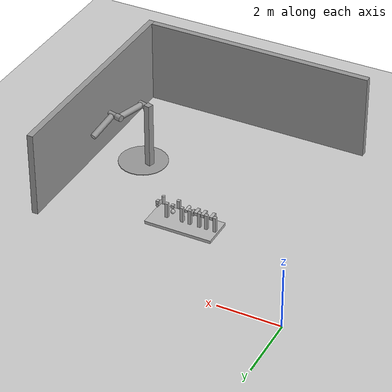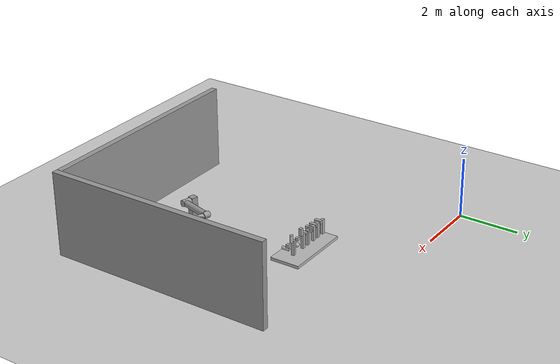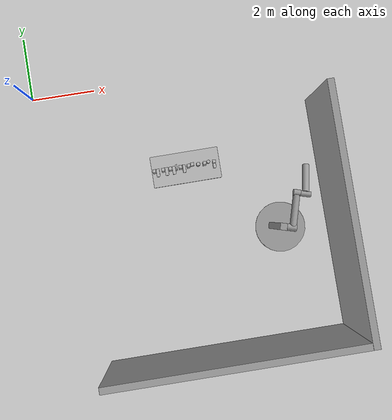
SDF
<sdf version="1.6">
 <world name="default">
  <model name="ground_plane">
   <static>1</static>
   <link name="link">
    <collision name="collision">
     <geometry><plane><normal>0 0 1</normal><size>100 100</size></plane></geometry>
     <surface>
      <contact><collide_bitmask>65535</collide_bitmask></contact>
      <friction><ode><mu>100</mu><mu2>50</mu2></ode></friction>
     </surface>
    </collision>
    <visual name="visual">
     <cast_shadows>0</cast_shadows>
     <geometry><plane><normal>0 0 1</normal><size>100 100</size></plane></geometry>
     <material>
      <script><uri>file://media/materials/scripts/gazebo.material</uri><name>Gazebo/Grey</name></script>
     </material>
    </visual>
   </link>
  </model>
  <model name="grey_wall_0">
   <static>1</static>
   <link name="link">
    <pose>0 0 1.4 0 -0 0</pose>
    <collision name="collision"><geometry><box><size>7.5 0.2 2.8</size></box></geometry></collision>
    <visual name="visual">
     <cast_shadows>0</cast_shadows>
     <geometry><box><size>7.5 0.2 2.8</size></box></geometry>
     <material>
      <script>
       <uri>model://grey_wall/materials/scripts</uri>
       <uri>model://grey_wall/materials/textures</uri>
       <name>vrc/grey_wall</name>
      </script>
     </material>
    </visual>
   </link>
   <pose>5 -8.8 0 0 -0 0</pose>
  </model>
  <model name="grey_wall_0_clone">
   <static>1</static>
   <link name="link">
    <pose>0 0 1.4 0 -0 0</pose>
    <collision name="collision"><geometry><box><size>7.5 0.2 2.8</size></box></geometry></collision>
    <visual name="visual">
     <cast_shadows>0</cast_shadows>
     <geometry><box><size>7.5 0.2 2.8</size></box></geometry>
     <material>
      <script>
       <uri>model://grey_wall/materials/scripts</uri>
       <uri>model://grey_wall/materials/textures</uri>
       <name>vrc/grey_wall</name>
      </script>
     </material>
    </visual>
   </link>
   <pose>8.84774 -5.14887 0 0 -0 1.57198</pose>
  </model>
  <model name="demo_joint_types">
   <link name="heavy_base">
    <pose>0 0 0.05 0 -0 0</pose>
    <inertial>
     <mass>100</mass>
     <inertia><ixx>8.4167</ixx><ixy>0</ixy><ixz>0</ixz><iyy>40.417</iyy><iyz>0</iyz><izz>48.667</izz></inertia>
    </inertial>
    <collision name="heavy_base_collision"><geometry><box><size>2.2 1 0.1</size></box></geometry></collision>
    <visual name="heavy_base_visual">
     <geometry><box><size>2.2 1 0.1</size></box></geometry>
     <material>
      <script>
       <uri>model://demo_joint_types/materials/scripts</uri>
       <uri>model://demo_joint_types/materials/textures</uri>
       <name>demo_joint_types/legend</name>
      </script>
     </material>
    </visual>
   </link>
   <link name="revolute_base">
    <pose>-0.72 0 0.35 0 -0 0</pose>
    <inertial>
     <inertia>
      <ixx>0.021667</ixx>
      <ixy>0</ixy>
      <ixz>0</ixz>
      <iyy>0.021667</iyy>
      <iyz>0</iyz>
      <izz>0.0016667</izz>
     </inertia>
     <mass>1</mass>
    </inertial>
    <collision name="revolute_base_collision"><geometry><box><size>0.1 0.1 0.5</size></box></geometry></collision>
    <visual name="revolute_base_visual">
     <geometry><box><size>0.1 0.1 0.5</size></box></geometry>
     <material>
      <script>
       <uri>model://demo_joint_types/materials/scripts</uri>
       <uri>model://demo_joint_types/materials/textures</uri>
       <name>demo_joint_types/parent</name>
      </script>
     </material>
    </visual>
   </link>
   <joint name="revolute_base_to_heavy_base" type="fixed">
    <parent>heavy_base</parent>
    <child>revolute_base</child>
   </joint>
   <link name="revolute_arm">
    <pose>-0.61 -0.075 0.55 0 -0 0</pose>
    <inertial>
     <inertia>
      <ixx>0.0060417</ixx>
      <ixy>0</ixy>
      <ixz>0</ixz>
      <iyy>0.0016667</iyy>
      <iyz>0</iyz>
      <izz>0.0060417</izz>
     </inertia>
     <mass>1</mass>
    </inertial>
    <collision name="revolute_arm_collision"><geometry><box><size>0.1 0.25 0.1</size></box></geometry></collision>
    <visual name="revolute_arm_visual">
     <geometry><box><size>0.1 0.25 0.1</size></box></geometry>
     <material>
      <script>
       <uri>model://demo_joint_types/materials/scripts</uri>
       <uri>model://demo_joint_types/materials/textures</uri>
       <name>demo_joint_types/child</name>
      </script>
     </material>
    </visual>
   </link>
   <joint name="revolute_demo" type="revolute">
    <parent>revolute_base</parent>
    <child>revolute_arm</child>
    <axis>
     <xyz>1 0 0</xyz>
     <use_parent_model_frame>0</use_parent_model_frame>
     <limit><lower>-1e+16</lower><upper>1e+16</upper></limit>
     <dynamics><spring_reference>0</spring_reference><spring_stiffness>0</spring_stiffness></dynamics>
    </axis>
    <pose>0 0.075 0 0 -0 0</pose>
   </joint>
   <link name="gearbox_base">
    <pose>-0.49 0 0.35 0 -0 0</pose>
    <inertial>
     <inertia>
      <ixx>0.021667</ixx>
      <ixy>0</ixy>
      <ixz>0</ixz>
      <iyy>0.021667</iyy>
      <iyz>0</iyz>
      <izz>0.0016667</izz>
     </inertia>
     <mass>1</mass>
    </inertial>
    <collision name="gearbox_base_collision"><geometry><box><size>0.1 0.1 0.5</size></box></geometry></collision>
    <visual name="gearbox_base_visual">
     <geometry><box><size>0.1 0.1 0.5</size></box></geometry>
     <material>
      <script>
       <uri>model://demo_joint_types/materials/scripts</uri>
       <uri>model://demo_joint_types/materials/textures</uri>
       <name>demo_joint_types/reference</name>
      </script>
     </material>
    </visual>
   </link>
   <joint name="gearbox_base_to_heavy_base" type="fixed">
    <parent>heavy_base</parent>
    <child>gearbox_base</child>
   </joint>
   <link name="gearbox_input">
    <pose>-0.38 -0.075 0.55 0 -0 0</pose>
    <inertial>
     <inertia>
      <ixx>0.0060417</ixx>
      <ixy>0</ixy>
      <ixz>0</ixz>
      <iyy>0.0016667</iyy>
      <iyz>0</iyz>
      <izz>0.0060417</izz>
     </inertia>
     <mass>1</mass>
    </inertial>
    <collision name="gearbox_input_collision">
     <geometry><box><size>0.1 0.25 0.1</size></box></geometry>
    </collision>
    <visual name="gearbox_input_visual">
     <geometry><box><size>0.1 0.25 0.1</size></box></geometry>
     <material>
      <script>
       <uri>model://demo_joint_types/materials/scripts</uri>
       <uri>model://demo_joint_types/materials/textures</uri>
       <name>demo_joint_types/parent</name>
      </script>
     </material>
    </visual>
   </link>
   <link name="gearbox_output">
    <gravity>0</gravity>
    <pose>-0.3 0 0.55 3.14159 1.57079 3.14159</pose>
    <inertial>
     <mass>0.1</mass>
     <inertia>
      <ixx>0.00027083</ixx>
      <ixy>0</ixy>
      <ixz>0</ixz>
      <iyy>0.00027083</iyy>
      <iyz>0</iyz>
      <izz>0.0005</izz>
     </inertia>
    </inertial>
    <collision name="gearbox_output_collision">
     <geometry><cylinder><radius>0.1</radius><length>0.05</length></cylinder></geometry>
    </collision>
    <visual name="gearbox_output_visual">
     <geometry><cylinder><radius>0.1</radius><length>0.05</length></cylinder></geometry>
     <material>
      <script>
       <uri>model://demo_joint_types/materials/scripts</uri>
       <uri>model://demo_joint_types/materials/textures</uri>
       <name>demo_joint_types/child</name>
      </script>
     </material>
    </visual>
   </link>
   <joint name="gearbox_input_joint" type="revolute">
    <parent>gearbox_base</parent>
    <child>gearbox_input</child>
    <axis>
     <xyz>1 0 0</xyz>
     <use_parent_model_frame>0</use_parent_model_frame>
     <limit><lower>-1e+16</lower><upper>1e+16</upper></limit>
     <dynamics><spring_reference>0</spring_reference><spring_stiffness>0</spring_stiffness></dynamics>
    </axis>
    <pose>0 0.075 0 0 -0 0</pose>
   </joint>
   <joint name="gearbox_output_joint" type="revolute">
    <parent>gearbox_base</parent>
    <child>gearbox_output</child>
    <axis>
     <xyz>0 0 1</xyz>
     <use_parent_model_frame>0</use_parent_model_frame>
     <limit><lower>-1e+16</lower><upper>1e+16</upper></limit>
     <dynamics><spring_reference>0</spring_reference><spring_stiffness>0</spring_stiffness></dynamics>
    </axis>
   </joint>
   <joint name="gearbox_demo" type="gearbox">
    <parent>gearbox_input</parent>
    <child>gearbox_output</child>
    <gearbox_reference_body>gearbox_base</gearbox_reference_body>
    <gearbox_ratio>5</gearbox_ratio>
    <axis>
     <xyz>0 0 1</xyz>
     <use_parent_model_frame>0</use_parent_model_frame>
     <limit><lower>-1e+16</lower><upper>1e+16</upper></limit>
     <dynamics><spring_reference>0</spring_reference><spring_stiffness>0</spring_stiffness></dynamics>
    </axis>
    <axis2>
     <xyz>0 0 1</xyz>
     <use_parent_model_frame>0</use_parent_model_frame>
     <dynamics><spring_reference>0</spring_reference><spring_stiffness>0</spring_stiffness></dynamics>
    </axis2>
   </joint>
   <link name="revolute2_base">
    <pose>-0.17 0 0.35 0 -0 0</pose>
    <inertial>
     <inertia>
      <ixx>0.021667</ixx>
      <ixy>0</ixy>
      <ixz>0</ixz>
      <iyy>0.021667</iyy>
      <iyz>0</iyz>
      <izz>0.0016667</izz>
     </inertia>
     <mass>1</mass>
    </inertial>
    <collision name="revolute2_base_collision">
     <geometry><box><size>0.1 0.1 0.5</size></box></geometry>
    </collision>
    <visual name="revolute2_base_visual">
     <geometry><box><size>0.1 0.1 0.5</size></box></geometry>
     <material>
      <script>
       <uri>model://demo_joint_types/materials/scripts</uri>
       <uri>model://demo_joint_types/materials/textures</uri>
       <name>demo_joint_types/parent</name>
      </script>
     </material>
    </visual>
   </link>
   <joint name="revolute2_base_to_heavy_base" type="fixed">
    <parent>heavy_base</parent>
    <child>revolute2_base</child>
   </joint>
   <link name="revolute2_arm">
    <pose>-0.06 -0.075 0.55 1.5708 -0 0</pose>
    <inertial>
     <inertia>
      <ixx>0.0058333</ixx>
      <ixy>0</ixy>
      <ixz>0</ixz>
      <iyy>0.0058333</iyy>
      <iyz>0</iyz>
      <izz>0.00125</izz>
     </inertia>
     <pose>-0.1 -0.1 0.1 0 -0 0</pose>
     <mass>1</mass>
    </inertial>
    <collision name="revolute2_arm_collision">
     <geometry><cylinder><radius>0.05</radius><length>0.25</length></cylinder></geometry>
    </collision>
    <visual name="revolute2_arm_visual">
     <geometry><cylinder><radius>0.05</radius><length>0.25</length></cylinder></geometry>
     <material>
      <script>
       <uri>model://demo_joint_types/materials/scripts</uri>
       <uri>model://demo_joint_types/materials/textures</uri>
       <name>demo_joint_types/child</name>
      </script>
     </material>
    </visual>
   </link>
   <joint name="revolute2_demo" type="revolute2">
    <parent>revolute2_base</parent>
    <child>revolute2_arm</child>
    <axis>
     <xyz>1 0 0</xyz>
     <use_parent_model_frame>0</use_parent_model_frame>
     <limit><lower>-1e+16</lower><upper>1e+16</upper></limit>
     <dynamics><spring_reference>0</spring_reference><spring_stiffness>0</spring_stiffness></dynamics>
    </axis>
    <axis2>
     <xyz>0 1 0</xyz>
     <use_parent_model_frame>0</use_parent_model_frame>
     <dynamics><spring_reference>0</spring_reference><spring_stiffness>0</spring_stiffness></dynamics>
    </axis2>
    <pose>0 0 -0.075 0 -0 0</pose>
   </joint>
   <link name="prismatic_base">
    <pose>0.09 0 0.35 0 -0 0</pose>
    <inertial>
     <inertia>
      <ixx>0.021667</ixx>
      <ixy>0</ixy>
      <ixz>0</ixz>
      <iyy>0.021667</iyy>
      <iyz>0</iyz>
      <izz>0.0016667</izz>
     </inertia>
     <mass>1</mass>
    </inertial>
    <collision name="prismatic_base_collision">
     <geometry><box><size>0.1 0.1 0.5</size></box></geometry>
    </collision>
    <visual name="prismatic_base_visual">
     <geometry><box><size>0.1 0.1 0.5</size></box></geometry>
     <material>
      <script>
       <uri>model://demo_joint_types/materials/scripts</uri>
       <uri>model://demo_joint_types/materials/textures</uri>
       <name>demo_joint_types/parent</name>
      </script>
     </material>
    </visual>
   </link>
   <joint name="prismatic_base_to_heavy_base" type="fixed">
    <parent>heavy_base</parent>
    <child>prismatic_base</child>
   </joint>
   <link name="prismatic_slide">
    <pose>0.2 0 0.7 0 -0 0</pose>
    <inertial>
     <inertia>
      <ixx>0.0060417</ixx>
      <ixy>0</ixy>
      <ixz>0</ixz>
      <iyy>0.0060417</iyy>
      <iyz>0</iyz>
      <izz>0.0016667</izz>
     </inertia>
     <mass>1</mass>
    </inertial>
    <collision name="prismatic_slide_collision">
     <geometry><box><size>0.1 0.1 0.25</size></box></geometry>
    </collision>
    <visual name="prismatic_slide_visual">
     <geometry><box><size>0.1 0.1 0.25</size></box></geometry>
     <material>
      <script>
       <uri>model://demo_joint_types/materials/scripts</uri>
       <uri>model://demo_joint_types/materials/textures</uri>
       <name>demo_joint_types/child</name>
      </script>
     </material>
    </visual>
   </link>
   <joint name="prismatic_demo" type="prismatic">
    <parent>prismatic_base</parent>
    <child>prismatic_slide</child>
    <axis>
     <xyz>0 0 1</xyz>
     <limit><lower>-0.25</lower><upper>0.25</upper></limit>
     <dynamics><spring_stiffness>100</spring_stiffness><spring_reference>0</spring_reference></dynamics>
     <use_parent_model_frame>0</use_parent_model_frame>
    </axis>
   </joint>
   <link name="ball_socket">
    <pose>0.4 0 0.55 0 -0 0</pose>
    <inertial>
     <inertia>
      <ixx>0.0016667</ixx>
      <ixy>0</ixy>
      <ixz>0</ixz>
      <iyy>0.0016667</iyy>
      <iyz>0</iyz>
      <izz>0.0016667</izz>
     </inertia>
     <mass>1</mass>
    </inertial>
    <collision name="ball_socket_collision"><geometry><box><size>0.1 0.1 0.1</size></box></geometry></collision>
    <visual name="ball_socket_visual">
     <geometry><box><size>0.1 0.1 0.1</size></box></geometry>
     <material>
      <script>
       <uri>model://demo_joint_types/materials/scripts</uri>
       <uri>model://demo_joint_types/materials/textures</uri>
       <name>demo_joint_types/parent</name>
      </script>
     </material>
    </visual>
   </link>
   <joint name="ball_socket_to_heavy_base" type="fixed">
    <parent>heavy_base</parent>
    <child>ball_socket</child>
   </joint>
   <link name="ball_ball">
    <pose>0.4 0 0.35 0 -0 0</pose>
    <inertial>
     <inertia>
      <ixx>0.00196</ixx>
      <ixy>0.001</ixy>
      <ixz>0.001</ixz>
      <iyy>0.00196</iyy>
      <iyz>0.001</iyz>
      <izz>0.00196</izz>
     </inertia>
     <pose>0.1 -0.1 0.1 0 -0 0</pose>
     <mass>1</mass>
    </inertial>
    <collision name="ball_ball_collision"><geometry><sphere><radius>0.07</radius></sphere></geometry></collision>
    <visual name="ball_ball_visual">
     <geometry><sphere><radius>0.07</radius></sphere></geometry>
     <material>
      <script>
       <uri>model://demo_joint_types/materials/scripts</uri>
       <uri>model://demo_joint_types/materials/textures</uri>
       <name>demo_joint_types/child</name>
      </script>
     </material>
    </visual>
   </link>
   <joint name="ball_demo" type="ball"><parent>ball_socket</parent><child>ball_ball</child></joint>
   <link name="screw_base">
    <pose>0.6 0 0.35 0 -0 0</pose>
    <inertial>
     <inertia>
      <ixx>0.021667</ixx>
      <ixy>0</ixy>
      <ixz>0</ixz>
      <iyy>0.021667</iyy>
      <iyz>0</iyz>
      <izz>0.0016667</izz>
     </inertia>
     <mass>1</mass>
    </inertial>
    <collision name="screw_base_collision"><geometry><box><size>0.1 0.1 0.5</size></box></geometry></collision>
    <visual name="screw_base_visual">
     <geometry><box><size>0.1 0.1 0.5</size></box></geometry>
     <material>
      <script>
       <uri>model://demo_joint_types/materials/scripts</uri>
       <uri>model://demo_joint_types/materials/textures</uri>
       <name>demo_joint_types/parent</name>
      </script>
     </material>
    </visual>
   </link>
   <joint name="screw_base_to_heavy_base" type="fixed">
    <parent>heavy_base</parent>
    <child>screw_base</child>
   </joint>
   <link name="screw_thread">
    <pose>0.71 0 0.7 0 -0 0</pose>
    <inertial>
     <inertia>
      <ixx>0.0058333</ixx>
      <ixy>0</ixy>
      <ixz>0</ixz>
      <iyy>0.0058333</iyy>
      <iyz>0</iyz>
      <izz>0.00125</izz>
     </inertia>
     <mass>1</mass>
    </inertial>
    <collision name="screw_thread_collision">
     <geometry><cylinder><radius>0.05</radius><length>0.25</length></cylinder></geometry>
    </collision>
    <visual name="screw_thread_visual">
     <geometry><cylinder><radius>0.05</radius><length>0.25</length></cylinder></geometry>
     <material>
      <script>
       <uri>model://demo_joint_types/materials/scripts</uri>
       <uri>model://demo_joint_types/materials/textures</uri>
       <name>demo_joint_types/child</name>
      </script>
     </material>
    </visual>
   </link>
   <joint name="screw_thread" type="screw">
    <parent>screw_base</parent>
    <child>screw_thread</child>
    <thread_pitch>20</thread_pitch>
    <axis>
     <xyz>0 0 1</xyz>
     <dynamics><spring_stiffness>0.2</spring_stiffness><spring_reference>0</spring_reference></dynamics>
     <use_parent_model_frame>0</use_parent_model_frame>
     <limit><lower>-1e+16</lower><upper>1e+16</upper></limit>
    </axis>
   </joint>
   <link name="universal_base">
    <pose>0.9 0 0.55 0 -0 0</pose>
    <inertial>
     <inertia>
      <ixx>0.0016667</ixx>
      <ixy>0</ixy>
      <ixz>0</ixz>
      <iyy>0.0016667</iyy>
      <iyz>0</iyz>
      <izz>0.0016667</izz>
     </inertia>
     <mass>1</mass>
    </inertial>
    <collision name="universal_base_collision">
     <geometry><box><size>0.1 0.1 0.1</size></box></geometry>
    </collision>
    <visual name="universal_base_visual">
     <geometry><box><size>0.1 0.1 0.1</size></box></geometry>
     <material>
      <script>
       <uri>model://demo_joint_types/materials/scripts</uri>
       <uri>model://demo_joint_types/materials/textures</uri>
       <name>demo_joint_types/parent</name>
      </script>
     </material>
    </visual>
   </link>
   <joint name="universal_base_to_heavy_base" type="fixed">
    <parent>heavy_base</parent>
    <child>universal_base</child>
   </joint>
   <link name="universal_shaft">
    <pose>0.9 -0.075 0.44 1.5708 -0 0</pose>
    <inertial>
     <inertia>
      <ixx>0.0058333</ixx>
      <ixy>0</ixy>
      <ixz>0</ixz>
      <iyy>0.0058333</iyy>
      <iyz>0</iyz>
      <izz>0.00125</izz>
     </inertia>
     <pose>-0.02 0.02 0 0 -0 0</pose>
     <mass>1</mass>
    </inertial>
    <collision name="universal_shaft_collision">
     <geometry><cylinder><radius>0.05</radius><length>0.25</length></cylinder></geometry>
    </collision>
    <visual name="universal_shaft_visual">
     <geometry><cylinder><radius>0.05</radius><length>0.25</length></cylinder></geometry>
     <material>
      <script>
       <uri>model://demo_joint_types/materials/scripts</uri>
       <uri>model://demo_joint_types/materials/textures</uri>
       <name>demo_joint_types/child</name>
      </script>
     </material>
    </visual>
   </link>
   <joint name="universal_demo" type="universal">
    <parent>universal_base</parent>
    <child>universal_shaft</child>
    <pose>0 0 -0.075 0 -0 0</pose>
   </joint>
   <link name="fixed_base">
    <pose>-1 0 0.35 0 -0 0</pose>
    <inertial>
     <inertia>
      <ixx>0.021667</ixx>
      <ixy>0</ixy>
      <ixz>0</ixz>
      <iyy>0.021667</iyy>
      <iyz>0</iyz>
      <izz>0.0016667</izz>
     </inertia>
     <mass>1</mass>
    </inertial>
    <collision name="fixed_base_collision"><geometry><box><size>0.1 0.1 0.5</size></box></geometry></collision>
    <visual name="fixed_base_visual">
     <geometry><box><size>0.1 0.1 0.5</size></box></geometry>
     <material>
      <script>
       <uri>model://demo_joint_types/materials/scripts</uri>
       <uri>model://demo_joint_types/materials/textures</uri>
       <name>demo_joint_types/parent</name>
      </script>
     </material>
    </visual>
   </link>
   <link name="fixed_arm">
    <pose>-0.89 -0.075 0.55 0 -0 0</pose>
    <inertial>
     <inertia>
      <ixx>0.0060417</ixx>
      <ixy>0</ixy>
      <ixz>0</ixz>
      <iyy>0.0016667</iyy>
      <iyz>0</iyz>
      <izz>0.0060417</izz>
     </inertia>
     <mass>1</mass>
    </inertial>
    <collision name="fixed_arm_collision"><geometry><box><size>0.1 0.25 0.1</size></box></geometry></collision>
    <visual name="fixed_arm_visual">
     <geometry><box><size>0.1 0.25 0.1</size></box></geometry>
     <material>
      <script>
       <uri>model://demo_joint_types/materials/scripts</uri>
       <uri>model://demo_joint_types/materials/textures</uri>
       <name>demo_joint_types/child</name>
      </script>
     </material>
    </visual>
   </link>
   <joint name="fixed_base_to_heavy_base" type="fixed">
    <parent>heavy_base</parent>
    <child>fixed_base</child>
   </joint>
   <joint name="fixed_demo" type="fixed"><parent>fixed_base</parent><child>fixed_arm</child></joint>
   <pose>4.5623 -2.95245 -1.5e-05 0 -1.4e-05 0.003637</pose>
  </model>
  <model name="double_pendulum_with_base">
   <link name="base">
    <inertial>
     <mass>100</mass>
     <inertia><ixx>1</ixx><ixy>0</ixy><ixz>0</ixz><iyy>1</iyy><iyz>0</iyz><izz>1</izz></inertia>
    </inertial>
    <visual name="vis_plate_on_ground">
     <pose>0 0 0.01 0 -0 0</pose>
     <geometry><cylinder><radius>0.8</radius><length>0.02</length></cylinder></geometry>
     <material>
      <script><uri>file://media/materials/scripts/gazebo.material</uri><name>Gazebo/Grey</name></script>
     </material>
    </visual>
    <visual name="vis_pole">
     <pose>-0.275 0 1.1 0 -0 0</pose>
     <geometry><box><size>0.2 0.2 2.2</size></box></geometry>
     <material>
      <script><uri>file://media/materials/scripts/gazebo.material</uri><name>Gazebo/Grey</name></script>
     </material>
    </visual>
    <collision name="col_plate_on_ground">
     <pose>0 0 0.01 0 -0 0</pose>
     <geometry><cylinder><radius>0.8</radius><length>0.02</length></cylinder></geometry>
    </collision>
    <collision name="col_pole">
     <pose>-0.275 0 1.1 0 -0 0</pose>
     <geometry><box><size>0.2 0.2 2.2</size></box></geometry>
    </collision>
   </link>
   <link name="upper_link">
    <pose>0 0 2.1 -1.5708 0 0</pose>
    <inertial>
     <pose>0 0 0.5 0 -0 0</pose>
     <inertia><ixx>1</ixx><ixy>0</ixy><ixz>0</ixz><iyy>1</iyy><iyz>0</iyz><izz>1</izz></inertia>
     <mass>1</mass>
    </inertial>
    <visual name="vis_upper_joint">
     <pose>-0.05 0 0 3.14159 1.57079 3.14159</pose>
     <geometry><cylinder><radius>0.1</radius><length>0.3</length></cylinder></geometry>
     <material>
      <script><uri>file://media/materials/scripts/gazebo.material</uri><name>Gazebo/Grey</name></script>
     </material>
    </visual>
    <visual name="vis_lower_joint">
     <pose>0 0 1 3.14159 1.57079 3.14159</pose>
     <geometry><cylinder><radius>0.1</radius><length>0.2</length></cylinder></geometry>
     <material>
      <script><uri>file://media/materials/scripts/gazebo.material</uri><name>Gazebo/Grey</name></script>
     </material>
    </visual>
    <visual name="vis_cylinder">
     <pose>0 0 0.5 0 -0 0</pose>
     <geometry><cylinder><radius>0.1</radius><length>0.9</length></cylinder></geometry>
     <material>
      <script><uri>file://media/materials/scripts/gazebo.material</uri><name>Gazebo/Grey</name></script>
     </material>
    </visual>
    <collision name="col_upper_joint">
     <pose>-0.05 0 0 3.14159 1.57079 3.14159</pose>
     <geometry><cylinder><radius>0.1</radius><length>0.3</length></cylinder></geometry>
    </collision>
    <collision name="col_lower_joint">
     <pose>0 0 1 3.14159 1.57079 3.14159</pose>
     <geometry><cylinder><radius>0.1</radius><length>0.2</length></cylinder></geometry>
    </collision>
    <collision name="col_cylinder">
     <pose>0 0 0.5 0 -0 0</pose>
     <geometry><cylinder><radius>0.1</radius><length>0.9</length></cylinder></geometry>
    </collision>
   </link>
   <link name="lower_link">
    <pose>0.25 1 2.1 -2 0 0</pose>
    <inertial>
     <pose>0 0 0.5 0 -0 0</pose>
     <inertia><ixx>1</ixx><ixy>0</ixy><ixz>0</ixz><iyy>1</iyy><iyz>0</iyz><izz>1</izz></inertia>
     <mass>1</mass>
    </inertial>
    <visual name="vis_lower_joint">
     <pose>0 0 0 3.14159 1.57079 3.14159</pose>
     <geometry><cylinder><radius>0.08</radius><length>0.3</length></cylinder></geometry>
     <material>
      <script><uri>file://media/materials/scripts/gazebo.material</uri><name>Gazebo/Grey</name></script>
     </material>
    </visual>
    <visual name="vis_cylinder">
     <pose>0 0 0.5 0 -0 0</pose>
     <geometry><cylinder><radius>0.1</radius><length>0.9</length></cylinder></geometry>
     <material>
      <script><uri>file://media/materials/scripts/gazebo.material</uri><name>Gazebo/Grey</name></script>
     </material>
    </visual>
    <collision name="col_lower_joint">
     <pose>0 0 0 3.14159 1.57079 3.14159</pose>
     <geometry><cylinder><radius>0.08</radius><length>0.3</length></cylinder></geometry>
    </collision>
    <collision name="col_cylinder">
     <pose>0 0 0.5 0 -0 0</pose>
     <geometry><cylinder><radius>0.1</radius><length>0.9</length></cylinder></geometry>
    </collision>
   </link>
   <joint name="upper_joint" type="revolute">
    <parent>base</parent>
    <child>upper_link</child>
    <axis>
     <xyz>1 0 0</xyz>
     <use_parent_model_frame>0</use_parent_model_frame>
     <limit><lower>-1e+16</lower><upper>1e+16</upper></limit>
     <dynamics><spring_reference>0</spring_reference><spring_stiffness>0</spring_stiffness></dynamics>
    </axis>
   </joint>
   <joint name="lower_joint" type="revolute">
    <parent>upper_link</parent>
    <child>lower_link</child>
    <axis>
     <xyz>1 0 0</xyz>
     <use_parent_model_frame>0</use_parent_model_frame>
     <limit><lower>-1e+16</lower><upper>1e+16</upper></limit>
     <dynamics><spring_reference>0</spring_reference><spring_stiffness>0</spring_stiffness></dynamics>
    </axis>
   </joint>
   <pose>7.27013 -5.32 -2e-06 1.4e-05 1e-06 -0.277044</pose>
  </model>
 </world>
</sdf>
